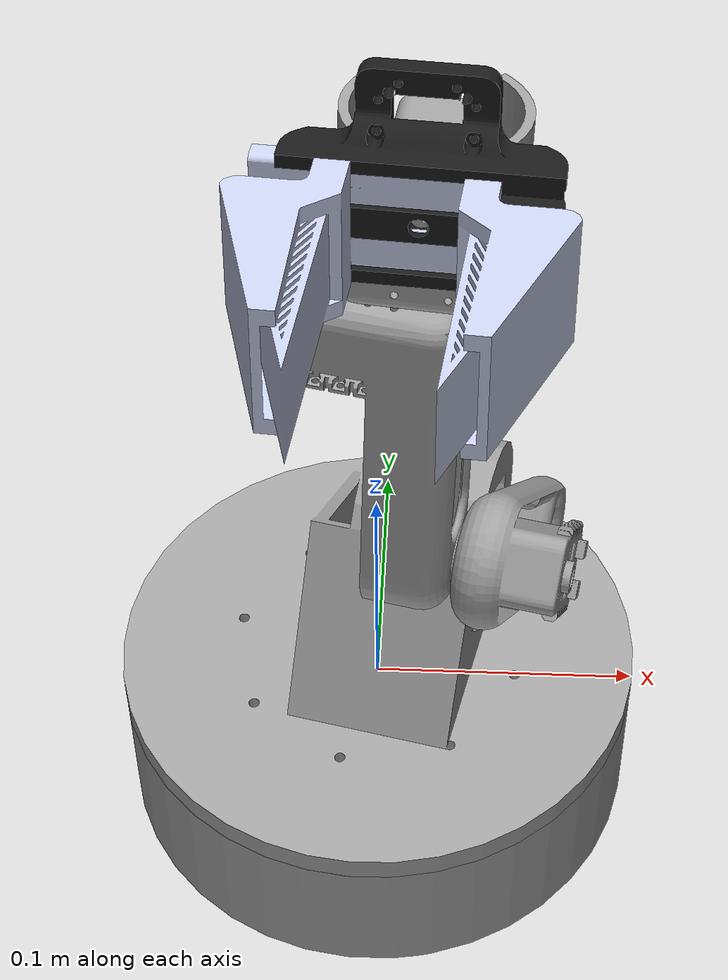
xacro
<?xml version="1.0"?>
<robot xmlns:xacro="http://www.ros.org/wiki/xacro" name="wb_arm">

  <xacro:arg name="is_ignition" default="True"/>
  <xacro:arg name="prefix" default=""/>
  <xacro:arg name="robot_name" default="robot1"/>
  <xacro:arg name="controllers_file"
    default="$(find wb_moveit_config)/config/ros2_controllers_robot1.yaml"/>

  <xacro:property name="prefix" value="$(arg prefix)"/>

  <xacro:include filename="$(find wb_description)/urdf/wb_arm_urdf.xacro"/>
  <xacro:include filename="$(find wb_description)/urdf/ros2control.xacro"/>
  <xacro:include filename="$(find wb_description)/urdf/gazebo.xacro"/>

  <xacro:ros2_control_block prefix="$(arg prefix)"/>
  <xacro:gazebo_block prefix="$(arg prefix)"/>

</robot>

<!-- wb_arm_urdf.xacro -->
<robot name="wb_arm" xmlns:xacro="http://www.ros.org/wiki/xacro">

  <xacro:arg name="prefix" default=""/>
  <xacro:arg name="is_ignition" default="True"/>
  <xacro:arg name="controllers_file"
    default="$(find wb_moveit_config)/config/ros2_controllers_robot1.yaml"/>

  <!-- THIS LINE IS THE FIX — assigns the arg to a property so ${prefix} works -->
  <xacro:property name="prefix" value="$(arg prefix)"/>

  <link name="${prefix}base_link">
    <inertial>
      <origin
        xyz="0.000557709080104192 -0.0310203811597613 2.61697242342029E-10"
        rpy="0 0 0" />
      <mass
        value="0.920670928530288" />
      <inertia
        ixx="0.00316954712940704"
        ixy="-5.1555275851763E-06"
        ixz="6.88186398929438E-12"
        iyy="0.00573821552927467"
        iyz="-5.44051769160888E-12"
        izz="0.00317735183037623" />
    </inertial>
    <visual>
      <origin
        xyz="0 0 0"
        rpy="0 0 0" />
      <geometry>
        <mesh
          filename="package://wb_description/meshes/base_link.STL" />
      </geometry>
      <material
        name="">
        <color
          rgba="0.627450980392157 0.627450980392157 0.627450980392157 1" />
      </material>
    </visual>
    <collision>
      <origin
        xyz="0 0 0"
        rpy="0 0 0" />
      <geometry>
        <mesh
          filename="package://wb_description/meshes/base_link.STL" />
      </geometry>
    </collision>
  </link>
  <link name="${prefix}Link_1">
    <inertial>
      <origin
        xyz="0.00704035589871813 0.0290660507623168 0.00591282730495968"
        rpy="0 0 0" />
      <mass
        value="0.57380385225019" />
      <inertia
        ixx="0.00126518417947566"
        ixy="-0.000142412200293822"
        ixz="-3.48091683775378E-05"
        iyy="0.00185028273887776"
        iyz="-8.05633276919184E-05"
        izz="0.00135242779688554" />
    </inertial>
    <visual>
      <origin
        xyz="0 0 0"
        rpy="0 0 0" />
      <geometry>
        <mesh
          filename="package://wb_description/meshes/Link_1.STL" />
      </geometry>
      <material
        name="">
        <color
          rgba="0.627450980392157 0.627450980392157 0.627450980392157 1" />
      </material>
    </visual>
    <collision>
      <origin
        xyz="0 0 0"
        rpy="0 0 0" />
      <geometry>
        <mesh
          filename="package://wb_description/meshes/Link_1.STL" />
      </geometry>
    </collision>
  </link>
  <joint name="${prefix}Link_1_joint"
    type="revolute">
    <origin
      xyz="0 0 0"
      rpy="1.5708 0 1.3484" />
    <parent
      link="${prefix}base_link" />
    <child
      link="${prefix}Link_1" />
    <axis
      xyz="0 1 0" />
    <limit lower="-3.14159" upper="3.14159" effort="10" velocity="1.0" />
  </joint>
  <link name="${prefix}Link_2">
    <inertial>
      <origin
        xyz="-8.56753294697921E-09 0.0664272700991406 -0.0462240500083936"
        rpy="0 0 0" />
      <mass
        value="0.0864353145237127" />
      <inertia
        ixx="0.000202784832696397"
        ixy="1.00818771445855E-11"
        ixz="1.04668440866038E-11"
        iyy="2.0291362762848E-05"
        iyz="1.41693040008123E-05"
        izz="0.000208034862273522" />
    </inertial>
    <visual>
      <origin
        xyz="0 0 0"
        rpy="0 0 0" />
      <geometry>
        <mesh
          filename="package://wb_description/meshes/Link_2.STL" />
      </geometry>
      <material
        name="">
        <color
          rgba="0.627450980392157 0.627450980392157 0.627450980392157 1" />
      </material>
    </visual>
    <collision>
      <origin
        xyz="0 0 0"
        rpy="0 0 0" />
      <geometry>
        <mesh
          filename="package://wb_description/meshes/Link_2.STL" />
      </geometry>
    </collision>
  </link>
  <joint name="${prefix}Link_2_joint"
    type="revolute">
    <origin
      xyz="0.027508 0.066646 0.010635"
      rpy="-3.1416 0 -2.3496" />
    <parent
      link="${prefix}Link_1" />
    <child
      link="${prefix}Link_2" />
    <axis
      xyz="0 0 1" />
    <limit lower="-3.14159" upper="3.14159" effort="10" velocity="1.0" />
  </joint>
  <link name="${prefix}link_3">
    <inertial>
      <origin
        xyz="-0.0096722982719092 1.79498070573825E-09 0.0709527461682015"
        rpy="0 0 0" />
      <mass
        value="0.0688091064479315" />
      <inertia
        ixx="8.78441462542828E-05"
        ixy="-2.07647068095428E-11"
        ixz="-1.12727274384252E-05"
        iyy="9.18163099042502E-05"
        iyz="4.70727466687249E-12"
        izz="2.29126007517969E-05" />
    </inertial>
    <visual>
      <origin
        xyz="0 0 0"
        rpy="0 0 0" />
      <geometry>
        <mesh
          filename="package://wb_description/meshes/link_3.STL" />
      </geometry>
      <material
        name="">
        <color
          rgba="0.627450980392157 0.627450980392157 0.627450980392157 1" />
      </material>
    </visual>
    <collision>
      <origin
        xyz="0 0 0"
        rpy="0 0 0" />
      <geometry>
        <mesh
          filename="package://wb_description/meshes/link_3.STL" />
      </geometry>
    </collision>
  </link>
  <joint name="${prefix}link_3_joint"
    type="revolute">
    <origin
      xyz="0 0.115 0"
      rpy="-2.9987 -1.5708 2.3562" />
    <parent
      link="${prefix}Link_2" />
    <child
      link="${prefix}link_3" />
    <axis
      xyz="1 0 0" />
    <limit lower="-3.14159" upper="3.14159" effort="10" velocity="1.0" />
  </joint>
  <link name="${prefix}link_4">
    <inertial>
      <origin
        xyz="0.0275273853685183 7.50331081476041E-05 0.000331105461625181"
        rpy="0 0 0" />
      <mass
        value="0.0660932505401602" />
      <inertia
        ixx="2.03909588269827E-05"
        ixy="1.35505349739708E-07"
        ixz="4.71164562445023E-07"
        iyy="2.53215736837329E-05"
        iyz="-1.43110430188206E-08"
        izz="3.00182976846221E-05" />
    </inertial>
    <visual>
      <origin
        xyz="0 0 0"
        rpy="0 0 0" />
      <geometry>
        <mesh
          filename="package://wb_description/meshes/link_4.STL" />
      </geometry>
      <material
        name="">
        <color
          rgba="0.627450980392157 0.627450980392157 0.627450980392157 1" />
      </material>
    </visual>
    <collision>
      <origin
        xyz="0 0 0"
        rpy="0 0 0" />
      <geometry>
        <mesh
          filename="package://wb_description/meshes/link_4.STL" />
      </geometry>
    </collision>
  </link>
  <joint name="${prefix}link_4_joint"
    type="revolute">
    <origin
      xyz="-0.017365 0 0.10748"
      rpy="1.6878 -1.5708 0" />
    <parent
      link="${prefix}link_3" />
    <child
      link="${prefix}link_4" />
    <axis
      xyz="1 0 0" />
    <limit lower="-3.14159" upper="3.14159" effort="10" velocity="1.0" />
  </joint>
  <link name="${prefix}gripper_base">
    <inertial>
      <origin
        xyz="0.0204075852144429 0.153073839258184 0.0116097967330193"
        rpy="0 0 0" />
      <mass
        value="0.0322306609735523" />
      <inertia
        ixx="8.089587147997E-06"
        ixy="-6.48500725963142E-09"
        ixz="2.43142440701503E-09"
        iyy="1.68919182054603E-05"
        iyz="8.74129600727565E-07"
        izz="2.33160720294232E-05" />
    </inertial>
    <visual>
      <origin
        xyz="0 0 0"
        rpy="0 0 0" />
      <geometry>
        <mesh
          filename="package://wb_description/meshes/gripper_base.STL" />
      </geometry>
      <material
        name="">
        <color
          rgba="0.0980392156862745 0.0980392156862745 0.0980392156862745 1" />
      </material>
    </visual>
    <collision>
      <origin
        xyz="0 0 0"
        rpy="0 0 0" />
      <geometry>
        <mesh
          filename="package://wb_description/meshes/gripper_base.STL" />
      </geometry>
    </collision>
  </link>
  <joint name="${prefix}gripper_base_joint(ridgid)"
    type="fixed">
    <origin
      xyz="-0.10748 -0.016078 -0.011959"
      rpy="-3.1416 0 1.5419" />
    <parent
      link="${prefix}link_4" />
    <child
      link="${prefix}gripper_base" />
    <axis
      xyz="0 0 0" />
  </joint>
  <link name="${prefix}gripper_hand_1">
    <inertial>
      <origin
        xyz="0.0122787579537141 0.0425667883457364 0.0394083388773067"
        rpy="0 0 0" />
      <mass
        value="0.0461488948542522" />
      <inertia
        ixx="3.47704164089966E-05"
        ixy="-2.29350036189154E-06"
        ixz="-2.4069940213933E-06"
        iyy="2.97580149614077E-05"
        iyz="-6.44837151108732E-06"
        izz="1.79917571856543E-05" />
    </inertial>
    <visual>
      <origin
        xyz="0 0 0"
        rpy="0 0 0" />
      <geometry>
        <mesh
          filename="package://wb_description/meshes/gripper_hand_1.STL" />
      </geometry>
      <material
        name="">
        <color
          rgba="0.792156862745098 0.819607843137255 0.933333333333333 1" />
      </material>
    </visual>
    <collision>
      <origin
        xyz="0 0 0"
        rpy="0 0 0" />
      <geometry>
        <mesh
          filename="package://wb_description/meshes/gripper_hand_1.STL" />
      </geometry>
    </collision>
  </link>
  <joint name="${prefix}gripper_hand_1_joint"
    type="prismatic">
    <origin
      xyz="0 0.16172 0.01238"
      rpy="0 0 -1.5708" />
    <parent
      link="${prefix}gripper_base" />
    <child
      link="${prefix}gripper_hand_1" />
    <axis
      xyz="0 1 0" />
    <limit lower="0.0" upper="0.04" effort="5" velocity="0.1" />
  </joint>
  <link name="${prefix}gripper_hand_2">
    <inertial>
      <origin
        xyz="0.0122787648695263 0.00765798665945662 0.0394083664692471"
        rpy="0 0 0" />
      <mass
        value="0.0461488388676109" />
      <inertia
        ixx="3.47703328461923E-05"
        ixy="-2.29349286057177E-06"
        ixz="-2.40698341385364E-06"
        iyy="2.97579732403287E-05"
        iyz="-6.44834197989532E-06"
        izz="1.79917027895009E-05" />
    </inertial>
    <visual>
      <origin
        xyz="0 0 0"
        rpy="0 0 0" />
      <geometry>
        <mesh
          filename="package://wb_description/meshes/gripper_hand_2.STL" />
      </geometry>
      <material
        name="">
        <color
          rgba="0.792156862745098 0.819607843137255 0.933333333333333 1" />
      </material>
    </visual>
    <collision>
      <origin
        xyz="0 0 0"
        rpy="0 0 0" />
      <geometry>
        <mesh
          filename="package://wb_description/meshes/gripper_hand_2.STL" />
      </geometry>
    </collision>
  </link>
  <joint name="${prefix}gripper_hand_2_joint"
    type="prismatic">
    <origin
      xyz="0 0.13622 0.01238"
      rpy="0 0 1.5708" />
    <parent
      link="${prefix}gripper_base" />
    <child
      link="${prefix}gripper_hand_2" />
    <axis
      xyz="0 1 0" />
    <limit lower="0.0" upper="0.04" effort="5" velocity="0.1" />
  </joint>
</robot>
